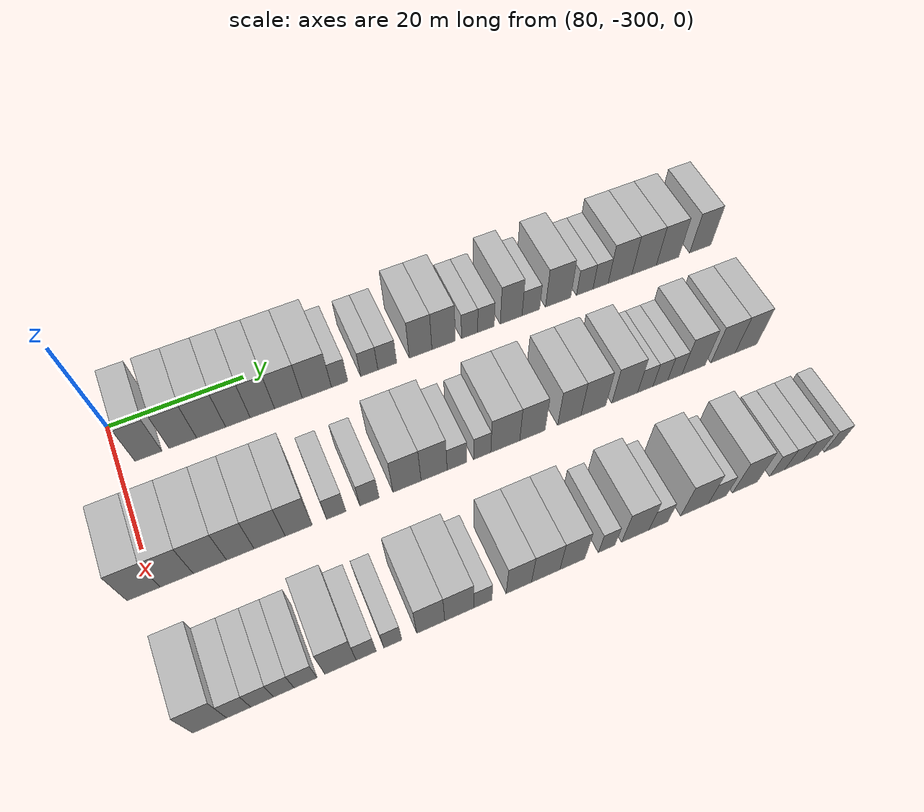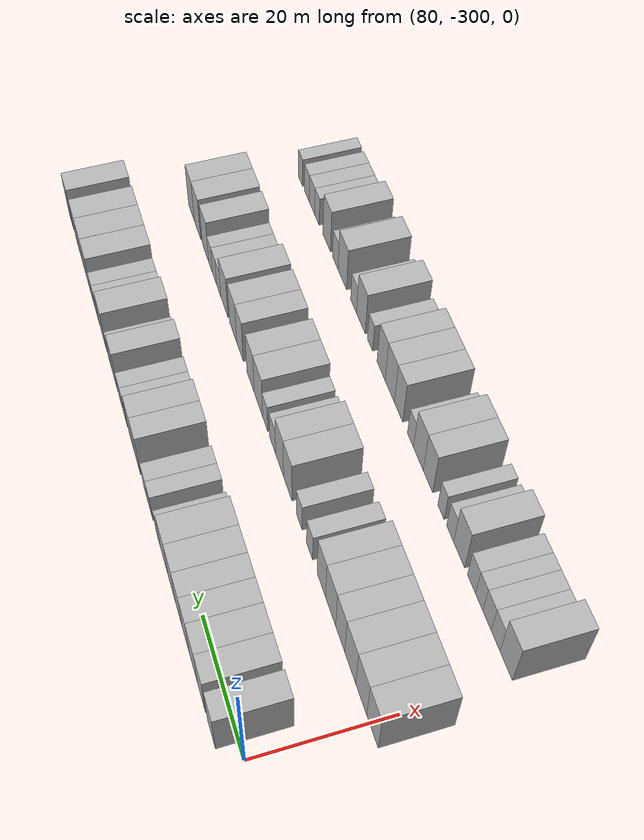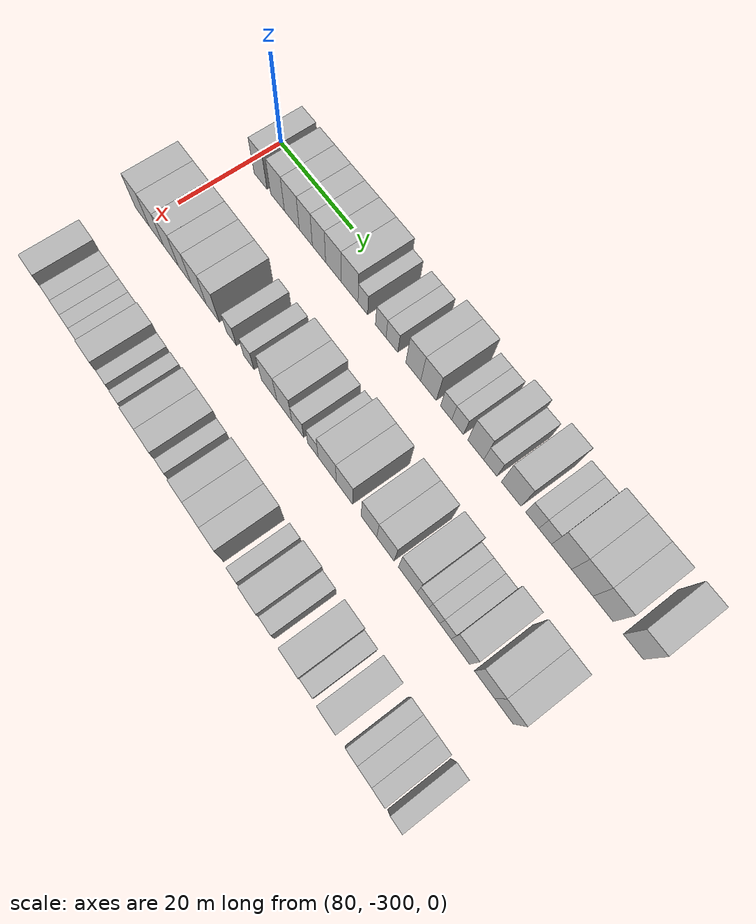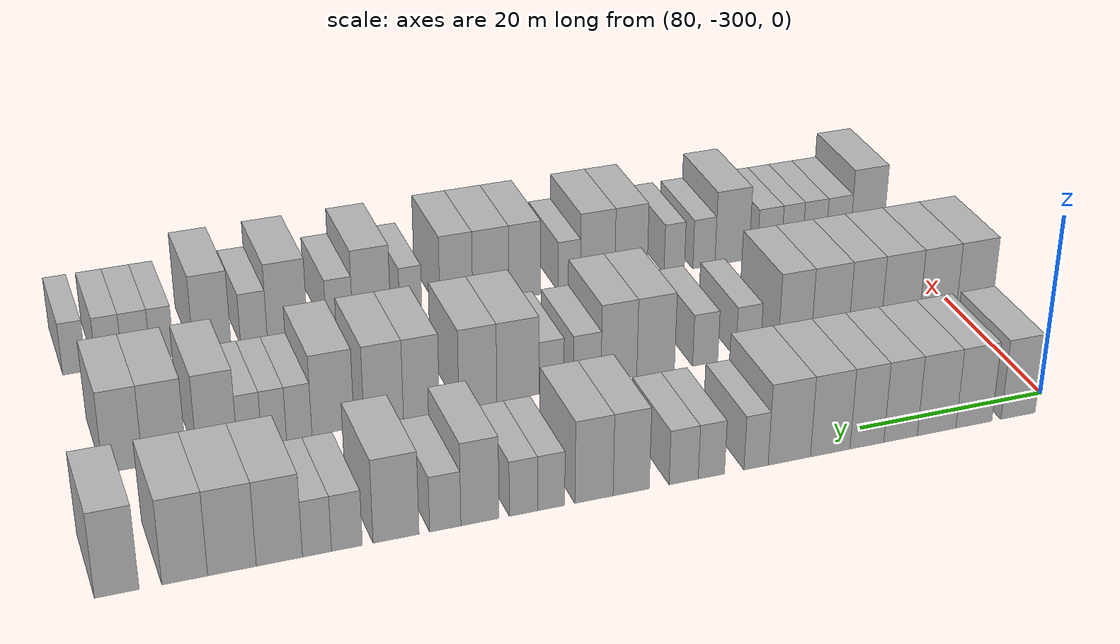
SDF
<sdf version="1.6">
 <world name="default">
  <model name="building_536">
   <static>1</static>
   <pose>82.0000 -295.7420 0 0.000000 0.000000 0.000000</pose>
   <link name="link">
    <pose>0 0 4.50 0 0 0</pose>
    <collision name="collision"><geometry><box><size>10.0000 3.7934 9.0000</size></box></geometry></collision>
    <visual name="visual">
     <cast_shadows>0</cast_shadows>
     <geometry><box><size>10.0000 3.7934 9.0000</size></box></geometry>
     <material>
      <script>
       <uri>model://HANNAS_wall/materials/scripts</uri>
       <uri>model://HANNAS_wall/materials/textures</uri>
       <name>vrc/HANNAS_wall</name>
      </script>
     </material>
    </visual>
   </link>
  </model>
  <model name="building_537">
   <static>1</static>
   <pose>82.0000 -290.8663 0 0.000000 0.000000 0.000000</pose>
   <link name="link">
    <pose>0 0 4.50 0 0 0</pose>
    <collision name="collision"><geometry><box><size>10.0000 3.9579 9.0000</size></box></geometry></collision>
    <visual name="visual">
     <cast_shadows>0</cast_shadows>
     <geometry><box><size>10.0000 3.9579 9.0000</size></box></geometry>
     <material>
      <script>
       <uri>model://HANNAS_wall/materials/scripts</uri>
       <uri>model://HANNAS_wall/materials/textures</uri>
       <name>vrc/HANNAS_wall</name>
      </script>
     </material>
    </visual>
   </link>
  </model>
  <model name="building_538">
   <static>1</static>
   <pose>82.0000 -286.7878 0 0.000000 0.000000 0.000000</pose>
   <link name="link">
    <pose>0 0 4.50 0 0 0</pose>
    <collision name="collision"><geometry><box><size>10.0000 4.1992 9.0000</size></box></geometry></collision>
    <visual name="visual">
     <cast_shadows>0</cast_shadows>
     <geometry><box><size>10.0000 4.1992 9.0000</size></box></geometry>
     <material>
      <script>
       <uri>model://HANNAS_wall/materials/scripts</uri>
       <uri>model://HANNAS_wall/materials/textures</uri>
       <name>vrc/HANNAS_wall</name>
      </script>
     </material>
    </visual>
   </link>
  </model>
  <model name="building_539">
   <static>1</static>
   <pose>82.0000 -282.8835 0 0.000000 0.000000 0.000000</pose>
   <link name="link">
    <pose>0 0 4.50 0 0 0</pose>
    <collision name="collision"><geometry><box><size>10.0000 3.6094 9.0000</size></box></geometry></collision>
    <visual name="visual">
     <cast_shadows>0</cast_shadows>
     <geometry><box><size>10.0000 3.6094 9.0000</size></box></geometry>
     <material>
      <script>
       <uri>model://HANNAS_wall/materials/scripts</uri>
       <uri>model://HANNAS_wall/materials/textures</uri>
       <name>vrc/HANNAS_wall</name>
      </script>
     </material>
    </visual>
   </link>
  </model>
  <model name="building_540">
   <static>1</static>
   <pose>82.0000 -279.2740 0 0.000000 0.000000 0.000000</pose>
   <link name="link">
    <pose>0 0 4.50 0 0 0</pose>
    <collision name="collision"><geometry><box><size>10.0000 3.6096 9.0000</size></box></geometry></collision>
    <visual name="visual">
     <cast_shadows>0</cast_shadows>
     <geometry><box><size>10.0000 3.6096 9.0000</size></box></geometry>
     <material>
      <script>
       <uri>model://HANNAS_wall/materials/scripts</uri>
       <uri>model://HANNAS_wall/materials/textures</uri>
       <name>vrc/HANNAS_wall</name>
      </script>
     </material>
    </visual>
   </link>
  </model>
  <model name="building_541">
   <static>1</static>
   <pose>82.0000 -275.3848 0 0.000000 0.000000 0.000000</pose>
   <link name="link">
    <pose>0 0 4.50 0 0 0</pose>
    <collision name="collision"><geometry><box><size>10.0000 4.1688 9.0000</size></box></geometry></collision>
    <visual name="visual">
     <cast_shadows>0</cast_shadows>
     <geometry><box><size>10.0000 4.1688 9.0000</size></box></geometry>
     <material>
      <script>
       <uri>model://HANNAS_wall/materials/scripts</uri>
       <uri>model://HANNAS_wall/materials/textures</uri>
       <name>vrc/HANNAS_wall</name>
      </script>
     </material>
    </visual>
   </link>
  </model>
  <model name="building_542">
   <static>1</static>
   <pose>82.0000 -271.0852 0 0.000000 0.000000 0.000000</pose>
   <link name="link">
    <pose>0 0 4.50 0 0 0</pose>
    <collision name="collision"><geometry><box><size>10.0000 4.4304 9.0000</size></box></geometry></collision>
    <visual name="visual">
     <cast_shadows>0</cast_shadows>
     <geometry><box><size>10.0000 4.4304 9.0000</size></box></geometry>
     <material>
      <script>
       <uri>model://HANNAS_wall/materials/scripts</uri>
       <uri>model://HANNAS_wall/materials/textures</uri>
       <name>vrc/HANNAS_wall</name>
      </script>
     </material>
    </visual>
   </link>
  </model>
  <model name="building_543">
   <static>1</static>
   <pose>82.0000 -267.6187 0 0.000000 0.000000 0.000000</pose>
   <link name="link">
    <pose>0 0 3.00 0 0 0</pose>
    <collision name="collision"><geometry><box><size>10.0000 2.5026 6.0000</size></box></geometry></collision>
    <visual name="visual">
     <cast_shadows>0</cast_shadows>
     <geometry><box><size>10.0000 2.5026 6.0000</size></box></geometry>
     <material>
      <script>
       <uri>model://HANNAS_wall/materials/scripts</uri>
       <uri>model://HANNAS_wall/materials/textures</uri>
       <name>vrc/HANNAS_wall</name>
      </script>
     </material>
    </visual>
   </link>
  </model>
  <model name="building_544">
   <static>1</static>
   <pose>82.0000 -263.0231 0 0.000000 0.000000 0.000000</pose>
   <link name="link">
    <pose>0 0 3.00 0 0 0</pose>
    <collision name="collision"><geometry><box><size>10.0000 2.6886 6.0000</size></box></geometry></collision>
    <visual name="visual">
     <cast_shadows>0</cast_shadows>
     <geometry><box><size>10.0000 2.6886 6.0000</size></box></geometry>
     <material>
      <script>
       <uri>model://HANNAS_wall/materials/scripts</uri>
       <uri>model://HANNAS_wall/materials/textures</uri>
       <name>vrc/HANNAS_wall</name>
      </script>
     </material>
    </visual>
   </link>
  </model>
  <model name="building_545">
   <static>1</static>
   <pose>82.0000 -260.1972 0 0.000000 0.000000 0.000000</pose>
   <link name="link">
    <pose>0 0 3.00 0 0 0</pose>
    <collision name="collision"><geometry><box><size>10.0000 2.9632 6.0000</size></box></geometry></collision>
    <visual name="visual">
     <cast_shadows>0</cast_shadows>
     <geometry><box><size>10.0000 2.9632 6.0000</size></box></geometry>
     <material>
      <script>
       <uri>model://HANNAS_wall/materials/scripts</uri>
       <uri>model://HANNAS_wall/materials/textures</uri>
       <name>vrc/HANNAS_wall</name>
      </script>
     </material>
    </visual>
   </link>
  </model>
  <model name="building_546">
   <static>1</static>
   <pose>82.0000 -254.9022 0 0.000000 0.000000 0.000000</pose>
   <link name="link">
    <pose>0 0 4.50 0 0 0</pose>
    <collision name="collision"><geometry><box><size>10.0000 3.6268 9.0000</size></box></geometry></collision>
    <visual name="visual">
     <cast_shadows>0</cast_shadows>
     <geometry><box><size>10.0000 3.6268 9.0000</size></box></geometry>
     <material>
      <script>
       <uri>model://HANNAS_wall/materials/scripts</uri>
       <uri>model://HANNAS_wall/materials/textures</uri>
       <name>vrc/HANNAS_wall</name>
      </script>
     </material>
    </visual>
   </link>
  </model>
  <model name="building_547">
   <static>1</static>
   <pose>82.0000 -251.1953 0 0.000000 0.000000 0.000000</pose>
   <link name="link">
    <pose>0 0 4.50 0 0 0</pose>
    <collision name="collision"><geometry><box><size>10.0000 3.7869 9.0000</size></box></geometry></collision>
    <visual name="visual">
     <cast_shadows>0</cast_shadows>
     <geometry><box><size>10.0000 3.7869 9.0000</size></box></geometry>
     <material>
      <script>
       <uri>model://HANNAS_wall/materials/scripts</uri>
       <uri>model://HANNAS_wall/materials/textures</uri>
       <name>vrc/HANNAS_wall</name>
      </script>
     </material>
    </visual>
   </link>
  </model>
  <model name="building_548">
   <static>1</static>
   <pose>82.0000 -246.9693 0 0.000000 0.000000 0.000000</pose>
   <link name="link">
    <pose>0 0 3.00 0 0 0</pose>
    <collision name="collision"><geometry><box><size>10.0000 2.6651 6.0000</size></box></geometry></collision>
    <visual name="visual">
     <cast_shadows>0</cast_shadows>
     <geometry><box><size>10.0000 2.6651 6.0000</size></box></geometry>
     <material>
      <script>
       <uri>model://HANNAS_wall/materials/scripts</uri>
       <uri>model://HANNAS_wall/materials/textures</uri>
       <name>vrc/HANNAS_wall</name>
      </script>
     </material>
    </visual>
   </link>
  </model>
  <model name="building_549">
   <static>1</static>
   <pose>82.0000 -244.2648 0 0.000000 0.000000 0.000000</pose>
   <link name="link">
    <pose>0 0 3.00 0 0 0</pose>
    <collision name="collision"><geometry><box><size>10.0000 2.7440 6.0000</size></box></geometry></collision>
    <visual name="visual">
     <cast_shadows>0</cast_shadows>
     <geometry><box><size>10.0000 2.7440 6.0000</size></box></geometry>
     <material>
      <script>
       <uri>model://HANNAS_wall/materials/scripts</uri>
       <uri>model://HANNAS_wall/materials/textures</uri>
       <name>vrc/HANNAS_wall</name>
      </script>
     </material>
    </visual>
   </link>
  </model>
  <model name="building_550">
   <static>1</static>
   <pose>82.0000 -240.0662 0 0.000000 0.000000 0.000000</pose>
   <link name="link">
    <pose>0 0 4.50 0 0 0</pose>
    <collision name="collision"><geometry><box><size>10.0000 3.6531 9.0000</size></box></geometry></collision>
    <visual name="visual">
     <cast_shadows>0</cast_shadows>
     <geometry><box><size>10.0000 3.6531 9.0000</size></box></geometry>
     <material>
      <script>
       <uri>model://HANNAS_wall/materials/scripts</uri>
       <uri>model://HANNAS_wall/materials/textures</uri>
       <name>vrc/HANNAS_wall</name>
      </script>
     </material>
    </visual>
   </link>
  </model>
  <model name="building_551">
   <static>1</static>
   <pose>82.0000 -236.7481 0 0.000000 0.000000 0.000000</pose>
   <link name="link">
    <pose>0 0 3.00 0 0 0</pose>
    <collision name="collision"><geometry><box><size>10.0000 2.9830 6.0000</size></box></geometry></collision>
    <visual name="visual">
     <cast_shadows>0</cast_shadows>
     <geometry><box><size>10.0000 2.9830 6.0000</size></box></geometry>
     <material>
      <script>
       <uri>model://HANNAS_wall/materials/scripts</uri>
       <uri>model://HANNAS_wall/materials/textures</uri>
       <name>vrc/HANNAS_wall</name>
      </script>
     </material>
    </visual>
   </link>
  </model>
  <model name="building_552">
   <static>1</static>
   <pose>82.0000 -232.0917 0 0.000000 0.000000 0.000000</pose>
   <link name="link">
    <pose>0 0 4.50 0 0 0</pose>
    <collision name="collision"><geometry><box><size>10.0000 4.3299 9.0000</size></box></geometry></collision>
    <visual name="visual">
     <cast_shadows>0</cast_shadows>
     <geometry><box><size>10.0000 4.3299 9.0000</size></box></geometry>
     <material>
      <script>
       <uri>model://HANNAS_wall/materials/scripts</uri>
       <uri>model://HANNAS_wall/materials/textures</uri>
       <name>vrc/HANNAS_wall</name>
      </script>
     </material>
    </visual>
   </link>
  </model>
  <model name="building_553">
   <static>1</static>
   <pose>82.0000 -227.4940 0 0.000000 0.000000 0.000000</pose>
   <link name="link">
    <pose>0 0 3.00 0 0 0</pose>
    <collision name="collision"><geometry><box><size>10.0000 2.8654 6.0000</size></box></geometry></collision>
    <visual name="visual">
     <cast_shadows>0</cast_shadows>
     <geometry><box><size>10.0000 2.8654 6.0000</size></box></geometry>
     <material>
      <script>
       <uri>model://HANNAS_wall/materials/scripts</uri>
       <uri>model://HANNAS_wall/materials/textures</uri>
       <name>vrc/HANNAS_wall</name>
      </script>
     </material>
    </visual>
   </link>
  </model>
  <model name="building_554">
   <static>1</static>
   <pose>82.0000 -224.7215 0 0.000000 0.000000 0.000000</pose>
   <link name="link">
    <pose>0 0 3.00 0 0 0</pose>
    <collision name="collision"><geometry><box><size>10.0000 2.6796 6.0000</size></box></geometry></collision>
    <visual name="visual">
     <cast_shadows>0</cast_shadows>
     <geometry><box><size>10.0000 2.6796 6.0000</size></box></geometry>
     <material>
      <script>
       <uri>model://HANNAS_wall/materials/scripts</uri>
       <uri>model://HANNAS_wall/materials/textures</uri>
       <name>vrc/HANNAS_wall</name>
      </script>
     </material>
    </visual>
   </link>
  </model>
  <model name="building_555">
   <static>1</static>
   <pose>82.0000 -221.2757 0 0.000000 0.000000 0.000000</pose>
   <link name="link">
    <pose>0 0 4.50 0 0 0</pose>
    <collision name="collision"><geometry><box><size>10.0000 4.2120 9.0000</size></box></geometry></collision>
    <visual name="visual">
     <cast_shadows>0</cast_shadows>
     <geometry><box><size>10.0000 4.2120 9.0000</size></box></geometry>
     <material>
      <script>
       <uri>model://HANNAS_wall/materials/scripts</uri>
       <uri>model://HANNAS_wall/materials/textures</uri>
       <name>vrc/HANNAS_wall</name>
      </script>
     </material>
    </visual>
   </link>
  </model>
  <model name="building_556">
   <static>1</static>
   <pose>82.0000 -216.9725 0 0.000000 0.000000 0.000000</pose>
   <link name="link">
    <pose>0 0 4.50 0 0 0</pose>
    <collision name="collision"><geometry><box><size>10.0000 4.3943 9.0000</size></box></geometry></collision>
    <visual name="visual">
     <cast_shadows>0</cast_shadows>
     <geometry><box><size>10.0000 4.3943 9.0000</size></box></geometry>
     <material>
      <script>
       <uri>model://HANNAS_wall/materials/scripts</uri>
       <uri>model://HANNAS_wall/materials/textures</uri>
       <name>vrc/HANNAS_wall</name>
      </script>
     </material>
    </visual>
   </link>
  </model>
  <model name="building_557">
   <static>1</static>
   <pose>82.0000 -212.7305 0 0.000000 0.000000 0.000000</pose>
   <link name="link">
    <pose>0 0 4.50 0 0 0</pose>
    <collision name="collision"><geometry><box><size>10.0000 4.0896 9.0000</size></box></geometry></collision>
    <visual name="visual">
     <cast_shadows>0</cast_shadows>
     <geometry><box><size>10.0000 4.0896 9.0000</size></box></geometry>
     <material>
      <script>
       <uri>model://HANNAS_wall/materials/scripts</uri>
       <uri>model://HANNAS_wall/materials/textures</uri>
       <name>vrc/HANNAS_wall</name>
      </script>
     </material>
    </visual>
   </link>
  </model>
  <model name="building_558">
   <static>1</static>
   <pose>82.0000 -206.7186 0 0.000000 0.000000 0.000000</pose>
   <link name="link">
    <pose>0 0 4.50 0 0 0</pose>
    <collision name="collision"><geometry><box><size>10.0000 3.9342 9.0000</size></box></geometry></collision>
    <visual name="visual">
     <cast_shadows>0</cast_shadows>
     <geometry><box><size>10.0000 3.9342 9.0000</size></box></geometry>
     <material>
      <script>
       <uri>model://HANNAS_wall/materials/scripts</uri>
       <uri>model://HANNAS_wall/materials/textures</uri>
       <name>vrc/HANNAS_wall</name>
      </script>
     </material>
    </visual>
   </link>
  </model>
  <model name="building_707">
   <static>1</static>
   <pose>101.0000 -301.1291 0 0.000000 0.000000 0.000000</pose>
   <link name="link">
    <pose>0 0 4.50 0 0 0</pose>
    <collision name="collision"><geometry><box><size>10.0000 4.3223 9.0000</size></box></geometry></collision>
    <visual name="visual">
     <cast_shadows>0</cast_shadows>
     <geometry><box><size>10.0000 4.3223 9.0000</size></box></geometry>
     <material>
      <script>
       <uri>model://HANNAS_wall/materials/scripts</uri>
       <uri>model://HANNAS_wall/materials/textures</uri>
       <name>vrc/HANNAS_wall</name>
      </script>
     </material>
    </visual>
   </link>
  </model>
  <model name="building_708">
   <static>1</static>
   <pose>101.0000 -296.8015 0 0.000000 0.000000 0.000000</pose>
   <link name="link">
    <pose>0 0 4.50 0 0 0</pose>
    <collision name="collision"><geometry><box><size>10.0000 4.3329 9.0000</size></box></geometry></collision>
    <visual name="visual">
     <cast_shadows>0</cast_shadows>
     <geometry><box><size>10.0000 4.3329 9.0000</size></box></geometry>
     <material>
      <script>
       <uri>model://HANNAS_wall/materials/scripts</uri>
       <uri>model://HANNAS_wall/materials/textures</uri>
       <name>vrc/HANNAS_wall</name>
      </script>
     </material>
    </visual>
   </link>
  </model>
  <model name="building_709">
   <static>1</static>
   <pose>101.0000 -292.4182 0 0.000000 0.000000 0.000000</pose>
   <link name="link">
    <pose>0 0 4.50 0 0 0</pose>
    <collision name="collision"><geometry><box><size>10.0000 4.4336 9.0000</size></box></geometry></collision>
    <visual name="visual">
     <cast_shadows>0</cast_shadows>
     <geometry><box><size>10.0000 4.4336 9.0000</size></box></geometry>
     <material>
      <script>
       <uri>model://HANNAS_wall/materials/scripts</uri>
       <uri>model://HANNAS_wall/materials/textures</uri>
       <name>vrc/HANNAS_wall</name>
      </script>
     </material>
    </visual>
   </link>
  </model>
  <model name="building_710">
   <static>1</static>
   <pose>101.0000 -288.3326 0 0.000000 0.000000 0.000000</pose>
   <link name="link">
    <pose>0 0 4.50 0 0 0</pose>
    <collision name="collision"><geometry><box><size>10.0000 3.7374 9.0000</size></box></geometry></collision>
    <visual name="visual">
     <cast_shadows>0</cast_shadows>
     <geometry><box><size>10.0000 3.7374 9.0000</size></box></geometry>
     <material>
      <script>
       <uri>model://HANNAS_wall/materials/scripts</uri>
       <uri>model://HANNAS_wall/materials/textures</uri>
       <name>vrc/HANNAS_wall</name>
      </script>
     </material>
    </visual>
   </link>
  </model>
  <model name="building_711">
   <static>1</static>
   <pose>101.0000 -284.3201 0 0.000000 0.000000 0.000000</pose>
   <link name="link">
    <pose>0 0 4.50 0 0 0</pose>
    <collision name="collision"><geometry><box><size>10.0000 4.2876 9.0000</size></box></geometry></collision>
    <visual name="visual">
     <cast_shadows>0</cast_shadows>
     <geometry><box><size>10.0000 4.2876 9.0000</size></box></geometry>
     <material>
      <script>
       <uri>model://HANNAS_wall/materials/scripts</uri>
       <uri>model://HANNAS_wall/materials/textures</uri>
       <name>vrc/HANNAS_wall</name>
      </script>
     </material>
    </visual>
   </link>
  </model>
  <model name="building_712">
   <static>1</static>
   <pose>101.0000 -280.3068 0 0.000000 0.000000 0.000000</pose>
   <link name="link">
    <pose>0 0 4.50 0 0 0</pose>
    <collision name="collision"><geometry><box><size>10.0000 3.7390 9.0000</size></box></geometry></collision>
    <visual name="visual">
     <cast_shadows>0</cast_shadows>
     <geometry><box><size>10.0000 3.7390 9.0000</size></box></geometry>
     <material>
      <script>
       <uri>model://HANNAS_wall/materials/scripts</uri>
       <uri>model://HANNAS_wall/materials/textures</uri>
       <name>vrc/HANNAS_wall</name>
      </script>
     </material>
    </visual>
   </link>
  </model>
  <model name="building_713">
   <static>1</static>
   <pose>101.0000 -275.0623 0 0.000000 0.000000 0.000000</pose>
   <link name="link">
    <pose>0 0 3.00 0 0 0</pose>
    <collision name="collision"><geometry><box><size>10.0000 2.7501 6.0000</size></box></geometry></collision>
    <visual name="visual">
     <cast_shadows>0</cast_shadows>
     <geometry><box><size>10.0000 2.7501 6.0000</size></box></geometry>
     <material>
      <script>
       <uri>model://HANNAS_wall/materials/scripts</uri>
       <uri>model://HANNAS_wall/materials/textures</uri>
       <name>vrc/HANNAS_wall</name>
      </script>
     </material>
    </visual>
   </link>
  </model>
  <model name="building_714">
   <static>1</static>
   <pose>101.0000 -270.2967 0 0.000000 0.000000 0.000000</pose>
   <link name="link">
    <pose>0 0 3.00 0 0 0</pose>
    <collision name="collision"><geometry><box><size>10.0000 2.7811 6.0000</size></box></geometry></collision>
    <visual name="visual">
     <cast_shadows>0</cast_shadows>
     <geometry><box><size>10.0000 2.7811 6.0000</size></box></geometry>
     <material>
      <script>
       <uri>model://HANNAS_wall/materials/scripts</uri>
       <uri>model://HANNAS_wall/materials/textures</uri>
       <name>vrc/HANNAS_wall</name>
      </script>
     </material>
    </visual>
   </link>
  </model>
  <model name="building_715">
   <static>1</static>
   <pose>101.0000 -264.8441 0 0.000000 0.000000 0.000000</pose>
   <link name="link">
    <pose>0 0 4.50 0 0 0</pose>
    <collision name="collision"><geometry><box><size>10.0000 4.1241 9.0000</size></box></geometry></collision>
    <visual name="visual">
     <cast_shadows>0</cast_shadows>
     <geometry><box><size>10.0000 4.1241 9.0000</size></box></geometry>
     <material>
      <script>
       <uri>model://HANNAS_wall/materials/scripts</uri>
       <uri>model://HANNAS_wall/materials/textures</uri>
       <name>vrc/HANNAS_wall</name>
      </script>
     </material>
    </visual>
   </link>
  </model>
  <model name="building_716">
   <static>1</static>
   <pose>101.0000 -260.8467 0 0.000000 0.000000 0.000000</pose>
   <link name="link">
    <pose>0 0 4.50 0 0 0</pose>
    <collision name="collision"><geometry><box><size>10.0000 3.8706 9.0000</size></box></geometry></collision>
    <visual name="visual">
     <cast_shadows>0</cast_shadows>
     <geometry><box><size>10.0000 3.8706 9.0000</size></box></geometry>
     <material>
      <script>
       <uri>model://HANNAS_wall/materials/scripts</uri>
       <uri>model://HANNAS_wall/materials/textures</uri>
       <name>vrc/HANNAS_wall</name>
      </script>
     </material>
    </visual>
   </link>
  </model>
  <model name="building_717">
   <static>1</static>
   <pose>101.0000 -257.4230 0 0.000000 0.000000 0.000000</pose>
   <link name="link">
    <pose>0 0 3.00 0 0 0</pose>
    <collision name="collision"><geometry><box><size>10.0000 2.9768 6.0000</size></box></geometry></collision>
    <visual name="visual">
     <cast_shadows>0</cast_shadows>
     <geometry><box><size>10.0000 2.9768 6.0000</size></box></geometry>
     <material>
      <script>
       <uri>model://HANNAS_wall/materials/scripts</uri>
       <uri>model://HANNAS_wall/materials/textures</uri>
       <name>vrc/HANNAS_wall</name>
      </script>
     </material>
    </visual>
   </link>
  </model>
  <model name="building_718">
   <static>1</static>
   <pose>101.0000 -253.6212 0 0.000000 0.000000 0.000000</pose>
   <link name="link">
    <pose>0 0 3.00 0 0 0</pose>
    <collision name="collision"><geometry><box><size>10.0000 2.6268 6.0000</size></box></geometry></collision>
    <visual name="visual">
     <cast_shadows>0</cast_shadows>
     <geometry><box><size>10.0000 2.6268 6.0000</size></box></geometry>
     <material>
      <script>
       <uri>model://HANNAS_wall/materials/scripts</uri>
       <uri>model://HANNAS_wall/materials/textures</uri>
       <name>vrc/HANNAS_wall</name>
      </script>
     </material>
    </visual>
   </link>
  </model>
  <model name="building_719">
   <static>1</static>
   <pose>101.0000 -250.0789 0 0.000000 0.000000 0.000000</pose>
   <link name="link">
    <pose>0 0 4.50 0 0 0</pose>
    <collision name="collision"><geometry><box><size>10.0000 4.4578 9.0000</size></box></geometry></collision>
    <visual name="visual">
     <cast_shadows>0</cast_shadows>
     <geometry><box><size>10.0000 4.4578 9.0000</size></box></geometry>
     <material>
      <script>
       <uri>model://HANNAS_wall/materials/scripts</uri>
       <uri>model://HANNAS_wall/materials/textures</uri>
       <name>vrc/HANNAS_wall</name>
      </script>
     </material>
    </visual>
   </link>
  </model>
  <model name="building_720">
   <static>1</static>
   <pose>101.0000 -245.8715 0 0.000000 0.000000 0.000000</pose>
   <link name="link">
    <pose>0 0 4.50 0 0 0</pose>
    <collision name="collision"><geometry><box><size>10.0000 3.9570 9.0000</size></box></geometry></collision>
    <visual name="visual">
     <cast_shadows>0</cast_shadows>
     <geometry><box><size>10.0000 3.9570 9.0000</size></box></geometry>
     <material>
      <script>
       <uri>model://HANNAS_wall/materials/scripts</uri>
       <uri>model://HANNAS_wall/materials/textures</uri>
       <name>vrc/HANNAS_wall</name>
      </script>
     </material>
    </visual>
   </link>
  </model>
  <model name="building_721">
   <static>1</static>
   <pose>101.0000 -240.0434 0 0.000000 0.000000 0.000000</pose>
   <link name="link">
    <pose>0 0 4.50 0 0 0</pose>
    <collision name="collision"><geometry><box><size>10.0000 3.6993 9.0000</size></box></geometry></collision>
    <visual name="visual">
     <cast_shadows>0</cast_shadows>
     <geometry><box><size>10.0000 3.6993 9.0000</size></box></geometry>
     <material>
      <script>
       <uri>model://HANNAS_wall/materials/scripts</uri>
       <uri>model://HANNAS_wall/materials/textures</uri>
       <name>vrc/HANNAS_wall</name>
      </script>
     </material>
    </visual>
   </link>
  </model>
  <model name="building_722">
   <static>1</static>
   <pose>101.0000 -236.1895 0 0.000000 0.000000 0.000000</pose>
   <link name="link">
    <pose>0 0 4.50 0 0 0</pose>
    <collision name="collision"><geometry><box><size>10.0000 4.0083 9.0000</size></box></geometry></collision>
    <visual name="visual">
     <cast_shadows>0</cast_shadows>
     <geometry><box><size>10.0000 4.0083 9.0000</size></box></geometry>
     <material>
      <script>
       <uri>model://HANNAS_wall/materials/scripts</uri>
       <uri>model://HANNAS_wall/materials/textures</uri>
       <name>vrc/HANNAS_wall</name>
      </script>
     </material>
    </visual>
   </link>
  </model>
  <model name="building_723">
   <static>1</static>
   <pose>101.0000 -231.0649 0 0.000000 0.000000 0.000000</pose>
   <link name="link">
    <pose>0 0 4.50 0 0 0</pose>
    <collision name="collision"><geometry><box><size>10.0000 4.2409 9.0000</size></box></geometry></collision>
    <visual name="visual">
     <cast_shadows>0</cast_shadows>
     <geometry><box><size>10.0000 4.2409 9.0000</size></box></geometry>
     <material>
      <script>
       <uri>model://HANNAS_wall/materials/scripts</uri>
       <uri>model://HANNAS_wall/materials/textures</uri>
       <name>vrc/HANNAS_wall</name>
      </script>
     </material>
    </visual>
   </link>
  </model>
  <model name="building_724">
   <static>1</static>
   <pose>101.0000 -227.6793 0 0.000000 0.000000 0.000000</pose>
   <link name="link">
    <pose>0 0 3.00 0 0 0</pose>
    <collision name="collision"><geometry><box><size>10.0000 2.5302 6.0000</size></box></geometry></collision>
    <visual name="visual">
     <cast_shadows>0</cast_shadows>
     <geometry><box><size>10.0000 2.5302 6.0000</size></box></geometry>
     <material>
      <script>
       <uri>model://HANNAS_wall/materials/scripts</uri>
       <uri>model://HANNAS_wall/materials/textures</uri>
       <name>vrc/HANNAS_wall</name>
      </script>
     </material>
    </visual>
   </link>
  </model>
  <model name="building_725">
   <static>1</static>
   <pose>101.0000 -225.1898 0 0.000000 0.000000 0.000000</pose>
   <link name="link">
    <pose>0 0 3.00 0 0 0</pose>
    <collision name="collision"><geometry><box><size>10.0000 2.4489 6.0000</size></box></geometry></collision>
    <visual name="visual">
     <cast_shadows>0</cast_shadows>
     <geometry><box><size>10.0000 2.4489 6.0000</size></box></geometry>
     <material>
      <script>
       <uri>model://HANNAS_wall/materials/scripts</uri>
       <uri>model://HANNAS_wall/materials/textures</uri>
       <name>vrc/HANNAS_wall</name>
      </script>
     </material>
    </visual>
   </link>
  </model>
  <model name="building_726">
   <static>1</static>
   <pose>101.0000 -222.7647 0 0.000000 0.000000 0.000000</pose>
   <link name="link">
    <pose>0 0 3.00 0 0 0</pose>
    <collision name="collision"><geometry><box><size>10.0000 2.4012 6.0000</size></box></geometry></collision>
    <visual name="visual">
     <cast_shadows>0</cast_shadows>
     <geometry><box><size>10.0000 2.4012 6.0000</size></box></geometry>
     <material>
      <script>
       <uri>model://HANNAS_wall/materials/scripts</uri>
       <uri>model://HANNAS_wall/materials/textures</uri>
       <name>vrc/HANNAS_wall</name>
      </script>
     </material>
    </visual>
   </link>
  </model>
  <model name="building_727">
   <static>1</static>
   <pose>101.0000 -219.5807 0 0.000000 0.000000 0.000000</pose>
   <link name="link">
    <pose>0 0 4.50 0 0 0</pose>
    <collision name="collision"><geometry><box><size>10.0000 3.9669 9.0000</size></box></geometry></collision>
    <visual name="visual">
     <cast_shadows>0</cast_shadows>
     <geometry><box><size>10.0000 3.9669 9.0000</size></box></geometry>
     <material>
      <script>
       <uri>model://HANNAS_wall/materials/scripts</uri>
       <uri>model://HANNAS_wall/materials/textures</uri>
       <name>vrc/HANNAS_wall</name>
      </script>
     </material>
    </visual>
   </link>
  </model>
  <model name="building_728">
   <static>1</static>
   <pose>101.0000 -214.5120 0 0.000000 0.000000 0.000000</pose>
   <link name="link">
    <pose>0 0 4.50 0 0 0</pose>
    <collision name="collision"><geometry><box><size>10.0000 4.1704 9.0000</size></box></geometry></collision>
    <visual name="visual">
     <cast_shadows>0</cast_shadows>
     <geometry><box><size>10.0000 4.1704 9.0000</size></box></geometry>
     <material>
      <script>
       <uri>model://HANNAS_wall/materials/scripts</uri>
       <uri>model://HANNAS_wall/materials/textures</uri>
       <name>vrc/HANNAS_wall</name>
      </script>
     </material>
    </visual>
   </link>
  </model>
  <model name="building_729">
   <static>1</static>
   <pose>101.0000 -210.5205 0 0.000000 0.000000 0.000000</pose>
   <link name="link">
    <pose>0 0 4.50 0 0 0</pose>
    <collision name="collision"><geometry><box><size>10.0000 3.8128 9.0000</size></box></geometry></collision>
    <visual name="visual">
     <cast_shadows>0</cast_shadows>
     <geometry><box><size>10.0000 3.8128 9.0000</size></box></geometry>
     <material>
      <script>
       <uri>model://HANNAS_wall/materials/scripts</uri>
       <uri>model://HANNAS_wall/materials/textures</uri>
       <name>vrc/HANNAS_wall</name>
      </script>
     </material>
    </visual>
   </link>
  </model>
  <model name="building_882">
   <static>1</static>
   <pose>120.0000 -297.8964 0 0.000000 0.000000 0.000000</pose>
   <link name="link">
    <pose>0 0 4.50 0 0 0</pose>
    <collision name="collision"><geometry><box><size>10.0000 4.1463 9.0000</size></box></geometry></collision>
    <visual name="visual">
     <cast_shadows>0</cast_shadows>
     <geometry><box><size>10.0000 4.1463 9.0000</size></box></geometry>
     <material>
      <script>
       <uri>model://HANNAS_wall/materials/scripts</uri>
       <uri>model://HANNAS_wall/materials/textures</uri>
       <name>vrc/HANNAS_wall</name>
      </script>
     </material>
    </visual>
   </link>
  </model>
  <model name="building_883">
   <static>1</static>
   <pose>120.0000 -294.3263 0 0.000000 0.000000 0.000000</pose>
   <link name="link">
    <pose>0 0 3.00 0 0 0</pose>
    <collision name="collision"><geometry><box><size>10.0000 2.9939 6.0000</size></box></geometry></collision>
    <visual name="visual">
     <cast_shadows>0</cast_shadows>
     <geometry><box><size>10.0000 2.9939 6.0000</size></box></geometry>
     <material>
      <script>
       <uri>model://HANNAS_wall/materials/scripts</uri>
       <uri>model://HANNAS_wall/materials/textures</uri>
       <name>vrc/HANNAS_wall</name>
      </script>
     </material>
    </visual>
   </link>
  </model>
  <model name="building_884">
   <static>1</static>
   <pose>120.0000 -291.3962 0 0.000000 0.000000 0.000000</pose>
   <link name="link">
    <pose>0 0 3.00 0 0 0</pose>
    <collision name="collision"><geometry><box><size>10.0000 2.8663 6.0000</size></box></geometry></collision>
    <visual name="visual">
     <cast_shadows>0</cast_shadows>
     <geometry><box><size>10.0000 2.8663 6.0000</size></box></geometry>
     <material>
      <script>
       <uri>model://HANNAS_wall/materials/scripts</uri>
       <uri>model://HANNAS_wall/materials/textures</uri>
       <name>vrc/HANNAS_wall</name>
      </script>
     </material>
    </visual>
   </link>
  </model>
  <model name="building_885">
   <static>1</static>
   <pose>120.0000 -288.6717 0 0.000000 0.000000 0.000000</pose>
   <link name="link">
    <pose>0 0 3.00 0 0 0</pose>
    <collision name="collision"><geometry><box><size>10.0000 2.5826 6.0000</size></box></geometry></collision>
    <visual name="visual">
     <cast_shadows>0</cast_shadows>
     <geometry><box><size>10.0000 2.5826 6.0000</size></box></geometry>
     <material>
      <script>
       <uri>model://HANNAS_wall/materials/scripts</uri>
       <uri>model://HANNAS_wall/materials/textures</uri>
       <name>vrc/HANNAS_wall</name>
      </script>
     </material>
    </visual>
   </link>
  </model>
  <model name="building_886">
   <static>1</static>
   <pose>120.0000 -285.9162 0 0.000000 0.000000 0.000000</pose>
   <link name="link">
    <pose>0 0 3.00 0 0 0</pose>
    <collision name="collision"><geometry><box><size>10.0000 2.9285 6.0000</size></box></geometry></collision>
    <visual name="visual">
     <cast_shadows>0</cast_shadows>
     <geometry><box><size>10.0000 2.9285 6.0000</size></box></geometry>
     <material>
      <script>
       <uri>model://HANNAS_wall/materials/scripts</uri>
       <uri>model://HANNAS_wall/materials/textures</uri>
       <name>vrc/HANNAS_wall</name>
      </script>
     </material>
    </visual>
   </link>
  </model>
  <model name="building_887">
   <static>1</static>
   <pose>120.0000 -281.4054 0 0.000000 0.000000 0.000000</pose>
   <link name="link">
    <pose>0 0 4.50 0 0 0</pose>
    <collision name="collision"><geometry><box><size>10.0000 4.0931 9.0000</size></box></geometry></collision>
    <visual name="visual">
     <cast_shadows>0</cast_shadows>
     <geometry><box><size>10.0000 4.0931 9.0000</size></box></geometry>
     <material>
      <script>
       <uri>model://HANNAS_wall/materials/scripts</uri>
       <uri>model://HANNAS_wall/materials/textures</uri>
       <name>vrc/HANNAS_wall</name>
      </script>
     </material>
    </visual>
   </link>
  </model>
  <model name="building_888">
   <static>1</static>
   <pose>120.0000 -278.0429 0 0.000000 0.000000 0.000000</pose>
   <link name="link">
    <pose>0 0 3.00 0 0 0</pose>
    <collision name="collision"><geometry><box><size>10.0000 2.6320 6.0000</size></box></geometry></collision>
    <visual name="visual">
     <cast_shadows>0</cast_shadows>
     <geometry><box><size>10.0000 2.6320 6.0000</size></box></geometry>
     <material>
      <script>
       <uri>model://HANNAS_wall/materials/scripts</uri>
       <uri>model://HANNAS_wall/materials/textures</uri>
       <name>vrc/HANNAS_wall</name>
      </script>
     </material>
    </visual>
   </link>
  </model>
  <model name="building_889">
   <static>1</static>
   <pose>120.0000 -274.5210 0 0.000000 0.000000 0.000000</pose>
   <link name="link">
    <pose>0 0 3.00 0 0 0</pose>
    <collision name="collision"><geometry><box><size>10.0000 2.4119 6.0000</size></box></geometry></collision>
    <visual name="visual">
     <cast_shadows>0</cast_shadows>
     <geometry><box><size>10.0000 2.4119 6.0000</size></box></geometry>
     <material>
      <script>
       <uri>model://HANNAS_wall/materials/scripts</uri>
       <uri>model://HANNAS_wall/materials/textures</uri>
       <name>vrc/HANNAS_wall</name>
      </script>
     </material>
    </visual>
   </link>
  </model>
  <model name="building_890">
   <static>1</static>
   <pose>120.0000 -269.4192 0 0.000000 0.000000 0.000000</pose>
   <link name="link">
    <pose>0 0 4.50 0 0 0</pose>
    <collision name="collision"><geometry><box><size>10.0000 3.7917 9.0000</size></box></geometry></collision>
    <visual name="visual">
     <cast_shadows>0</cast_shadows>
     <geometry><box><size>10.0000 3.7917 9.0000</size></box></geometry>
     <material>
      <script>
       <uri>model://HANNAS_wall/materials/scripts</uri>
       <uri>model://HANNAS_wall/materials/textures</uri>
       <name>vrc/HANNAS_wall</name>
      </script>
     </material>
    </visual>
   </link>
  </model>
  <model name="building_891">
   <static>1</static>
   <pose>120.0000 -265.5276 0 0.000000 0.000000 0.000000</pose>
   <link name="link">
    <pose>0 0 4.50 0 0 0</pose>
    <collision name="collision"><geometry><box><size>10.0000 3.9915 9.0000</size></box></geometry></collision>
    <visual name="visual">
     <cast_shadows>0</cast_shadows>
     <geometry><box><size>10.0000 3.9915 9.0000</size></box></geometry>
     <material>
      <script>
       <uri>model://HANNAS_wall/materials/scripts</uri>
       <uri>model://HANNAS_wall/materials/textures</uri>
       <name>vrc/HANNAS_wall</name>
      </script>
     </material>
    </visual>
   </link>
  </model>
  <model name="building_892">
   <static>1</static>
   <pose>120.0000 -262.2655 0 0.000000 0.000000 0.000000</pose>
   <link name="link">
    <pose>0 0 3.00 0 0 0</pose>
    <collision name="collision"><geometry><box><size>10.0000 2.5327 6.0000</size></box></geometry></collision>
    <visual name="visual">
     <cast_shadows>0</cast_shadows>
     <geometry><box><size>10.0000 2.5327 6.0000</size></box></geometry>
     <material>
      <script>
       <uri>model://HANNAS_wall/materials/scripts</uri>
       <uri>model://HANNAS_wall/materials/textures</uri>
       <name>vrc/HANNAS_wall</name>
      </script>
     </material>
    </visual>
   </link>
  </model>
  <model name="building_893">
   <static>1</static>
   <pose>120.0000 -257.1889 0 0.000000 0.000000 0.000000</pose>
   <link name="link">
    <pose>0 0 4.50 0 0 0</pose>
    <collision name="collision"><geometry><box><size>10.0000 3.6207 9.0000</size></box></geometry></collision>
    <visual name="visual">
     <cast_shadows>0</cast_shadows>
     <geometry><box><size>10.0000 3.6207 9.0000</size></box></geometry>
     <material>
      <script>
       <uri>model://HANNAS_wall/materials/scripts</uri>
       <uri>model://HANNAS_wall/materials/textures</uri>
       <name>vrc/HANNAS_wall</name>
      </script>
     </material>
    </visual>
   </link>
  </model>
  <model name="building_894">
   <static>1</static>
   <pose>120.0000 -253.3412 0 0.000000 0.000000 0.000000</pose>
   <link name="link">
    <pose>0 0 4.50 0 0 0</pose>
    <collision name="collision"><geometry><box><size>10.0000 4.0747 9.0000</size></box></geometry></collision>
    <visual name="visual">
     <cast_shadows>0</cast_shadows>
     <geometry><box><size>10.0000 4.0747 9.0000</size></box></geometry>
     <material>
      <script>
       <uri>model://HANNAS_wall/materials/scripts</uri>
       <uri>model://HANNAS_wall/materials/textures</uri>
       <name>vrc/HANNAS_wall</name>
      </script>
     </material>
    </visual>
   </link>
  </model>
  <model name="building_895">
   <static>1</static>
   <pose>120.0000 -249.4750 0 0.000000 0.000000 0.000000</pose>
   <link name="link">
    <pose>0 0 4.50 0 0 0</pose>
    <collision name="collision"><geometry><box><size>10.0000 3.6576 9.0000</size></box></geometry></collision>
    <visual name="visual">
     <cast_shadows>0</cast_shadows>
     <geometry><box><size>10.0000 3.6576 9.0000</size></box></geometry>
     <material>
      <script>
       <uri>model://HANNAS_wall/materials/scripts</uri>
       <uri>model://HANNAS_wall/materials/textures</uri>
       <name>vrc/HANNAS_wall</name>
      </script>
     </material>
    </visual>
   </link>
  </model>
  <model name="building_896">
   <static>1</static>
   <pose>120.0000 -244.4230 0 0.000000 0.000000 0.000000</pose>
   <link name="link">
    <pose>0 0 3.00 0 0 0</pose>
    <collision name="collision"><geometry><box><size>10.0000 2.4464 6.0000</size></box></geometry></collision>
    <visual name="visual">
     <cast_shadows>0</cast_shadows>
     <geometry><box><size>10.0000 2.4464 6.0000</size></box></geometry>
     <material>
      <script>
       <uri>model://HANNAS_wall/materials/scripts</uri>
       <uri>model://HANNAS_wall/materials/textures</uri>
       <name>vrc/HANNAS_wall</name>
      </script>
     </material>
    </visual>
   </link>
  </model>
  <model name="building_897">
   <static>1</static>
   <pose>120.0000 -240.1254 0 0.000000 0.000000 0.000000</pose>
   <link name="link">
    <pose>0 0 4.50 0 0 0</pose>
    <collision name="collision"><geometry><box><size>10.0000 4.1488 9.0000</size></box></geometry></collision>
    <visual name="visual">
     <cast_shadows>0</cast_shadows>
     <geometry><box><size>10.0000 4.1488 9.0000</size></box></geometry>
     <material>
      <script>
       <uri>model://HANNAS_wall/materials/scripts</uri>
       <uri>model://HANNAS_wall/materials/textures</uri>
       <name>vrc/HANNAS_wall</name>
      </script>
     </material>
    </visual>
   </link>
  </model>
  <model name="building_898">
   <static>1</static>
   <pose>120.0000 -236.6124 0 0.000000 0.000000 0.000000</pose>
   <link name="link">
    <pose>0 0 3.00 0 0 0</pose>
    <collision name="collision"><geometry><box><size>10.0000 2.8771 6.0000</size></box></geometry></collision>
    <visual name="visual">
     <cast_shadows>0</cast_shadows>
     <geometry><box><size>10.0000 2.8771 6.0000</size></box></geometry>
     <material>
      <script>
       <uri>model://HANNAS_wall/materials/scripts</uri>
       <uri>model://HANNAS_wall/materials/textures</uri>
       <name>vrc/HANNAS_wall</name>
      </script>
     </material>
    </visual>
   </link>
  </model>
  <model name="building_899">
   <static>1</static>
   <pose>120.0000 -231.0256 0 0.000000 0.000000 0.000000</pose>
   <link name="link">
    <pose>0 0 4.50 0 0 0</pose>
    <collision name="collision"><geometry><box><size>10.0000 4.2966 9.0000</size></box></geometry></collision>
    <visual name="visual">
     <cast_shadows>0</cast_shadows>
     <geometry><box><size>10.0000 4.2966 9.0000</size></box></geometry>
     <material>
      <script>
       <uri>model://HANNAS_wall/materials/scripts</uri>
       <uri>model://HANNAS_wall/materials/textures</uri>
       <name>vrc/HANNAS_wall</name>
      </script>
     </material>
    </visual>
   </link>
  </model>
  <model name="building_900">
   <static>1</static>
   <pose>120.0000 -227.4569 0 0.000000 0.000000 0.000000</pose>
   <link name="link">
    <pose>0 0 3.00 0 0 0</pose>
    <collision name="collision"><geometry><box><size>10.0000 2.8407 6.0000</size></box></geometry></collision>
    <visual name="visual">
     <cast_shadows>0</cast_shadows>
     <geometry><box><size>10.0000 2.8407 6.0000</size></box></geometry>
     <material>
      <script>
       <uri>model://HANNAS_wall/materials/scripts</uri>
       <uri>model://HANNAS_wall/materials/textures</uri>
       <name>vrc/HANNAS_wall</name>
      </script>
     </material>
    </visual>
   </link>
  </model>
  <model name="building_901">
   <static>1</static>
   <pose>120.0000 -223.0527 0 0.000000 0.000000 0.000000</pose>
   <link name="link">
    <pose>0 0 4.50 0 0 0</pose>
    <collision name="collision"><geometry><box><size>10.0000 3.9679 9.0000</size></box></geometry></collision>
    <visual name="visual">
     <cast_shadows>0</cast_shadows>
     <geometry><box><size>10.0000 3.9679 9.0000</size></box></geometry>
     <material>
      <script>
       <uri>model://HANNAS_wall/materials/scripts</uri>
       <uri>model://HANNAS_wall/materials/textures</uri>
       <name>vrc/HANNAS_wall</name>
      </script>
     </material>
    </visual>
   </link>
  </model>
  <model name="building_902">
   <static>1</static>
   <pose>120.0000 -217.8477 0 0.000000 0.000000 0.000000</pose>
   <link name="link">
    <pose>0 0 3.00 0 0 0</pose>
    <collision name="collision"><geometry><box><size>10.0000 2.4421 6.0000</size></box></geometry></collision>
    <visual name="visual">
     <cast_shadows>0</cast_shadows>
     <geometry><box><size>10.0000 2.4421 6.0000</size></box></geometry>
     <material>
      <script>
       <uri>model://HANNAS_wall/materials/scripts</uri>
       <uri>model://HANNAS_wall/materials/textures</uri>
       <name>vrc/HANNAS_wall</name>
      </script>
     </material>
    </visual>
   </link>
  </model>
  <model name="building_903">
   <static>1</static>
   <pose>120.0000 -215.1732 0 0.000000 0.000000 0.000000</pose>
   <link name="link">
    <pose>0 0 3.00 0 0 0</pose>
    <collision name="collision"><geometry><box><size>10.0000 2.9068 6.0000</size></box></geometry></collision>
    <visual name="visual">
     <cast_shadows>0</cast_shadows>
     <geometry><box><size>10.0000 2.9068 6.0000</size></box></geometry>
     <material>
      <script>
       <uri>model://HANNAS_wall/materials/scripts</uri>
       <uri>model://HANNAS_wall/materials/textures</uri>
       <name>vrc/HANNAS_wall</name>
      </script>
     </material>
    </visual>
   </link>
  </model>
  <model name="building_904">
   <static>1</static>
   <pose>120.0000 -212.3829 0 0.000000 0.000000 0.000000</pose>
   <link name="link">
    <pose>0 0 3.00 0 0 0</pose>
    <collision name="collision"><geometry><box><size>10.0000 2.6740 6.0000</size></box></geometry></collision>
    <visual name="visual">
     <cast_shadows>0</cast_shadows>
     <geometry><box><size>10.0000 2.6740 6.0000</size></box></geometry>
     <material>
      <script>
       <uri>model://HANNAS_wall/materials/scripts</uri>
       <uri>model://HANNAS_wall/materials/textures</uri>
       <name>vrc/HANNAS_wall</name>
      </script>
     </material>
    </visual>
   </link>
  </model>
  <model name="building_905">
   <static>1</static>
   <pose>120.0000 -208.8458 0 0.000000 0.000000 0.000000</pose>
   <link name="link">
    <pose>0 0 3.00 0 0 0</pose>
    <collision name="collision"><geometry><box><size>10.0000 2.4001 6.0000</size></box></geometry></collision>
    <visual name="visual">
     <cast_shadows>0</cast_shadows>
     <geometry><box><size>10.0000 2.4001 6.0000</size></box></geometry>
     <material>
      <script>
       <uri>model://HANNAS_wall/materials/scripts</uri>
       <uri>model://HANNAS_wall/materials/textures</uri>
       <name>vrc/HANNAS_wall</name>
      </script>
     </material>
    </visual>
   </link>
  </model>
 </world>
</sdf>
